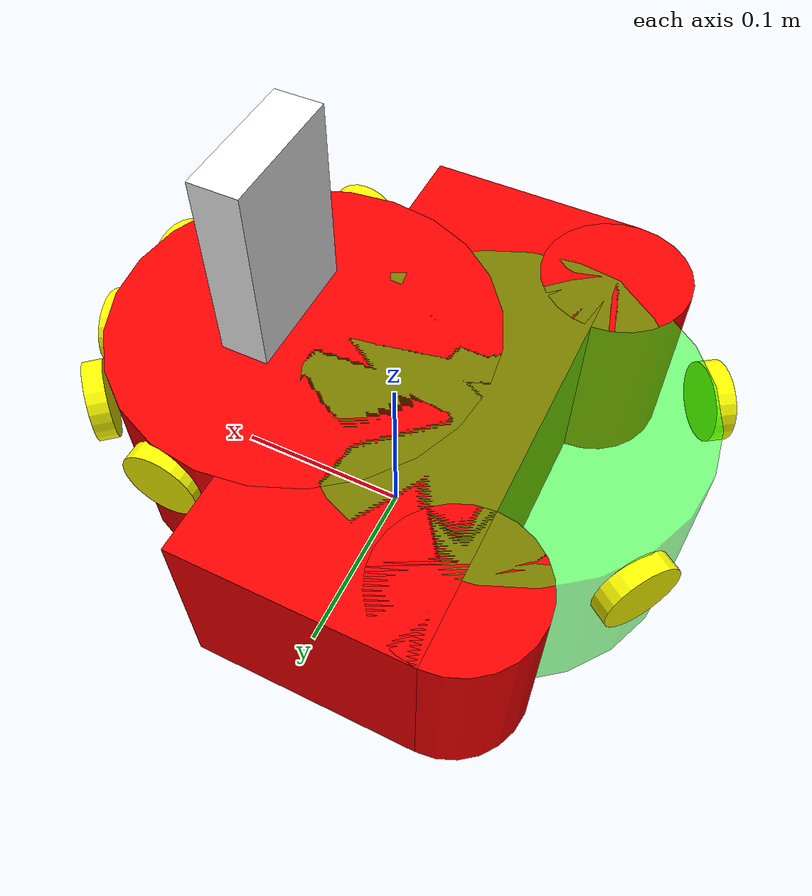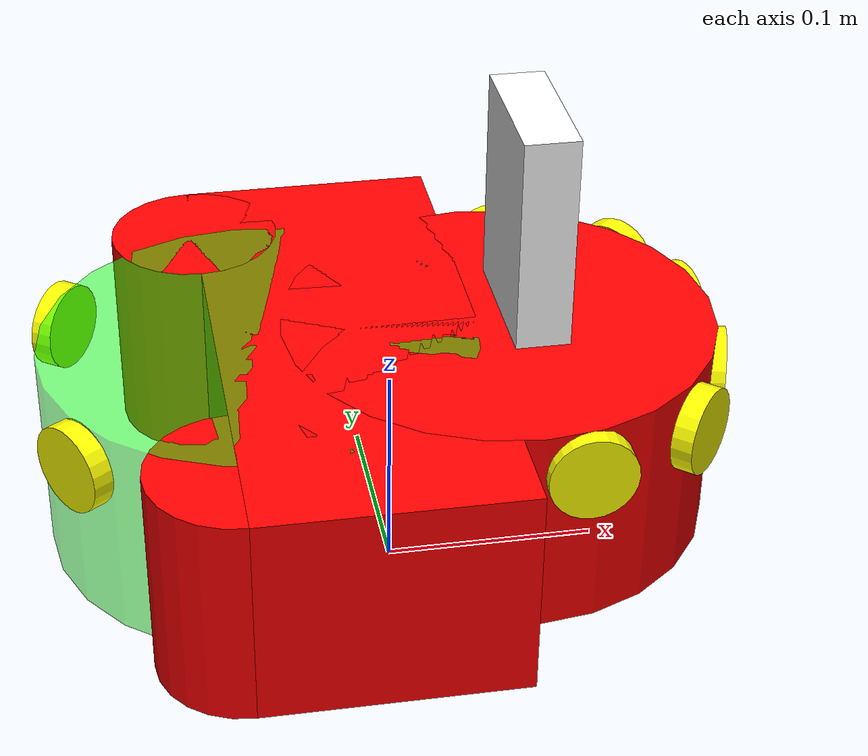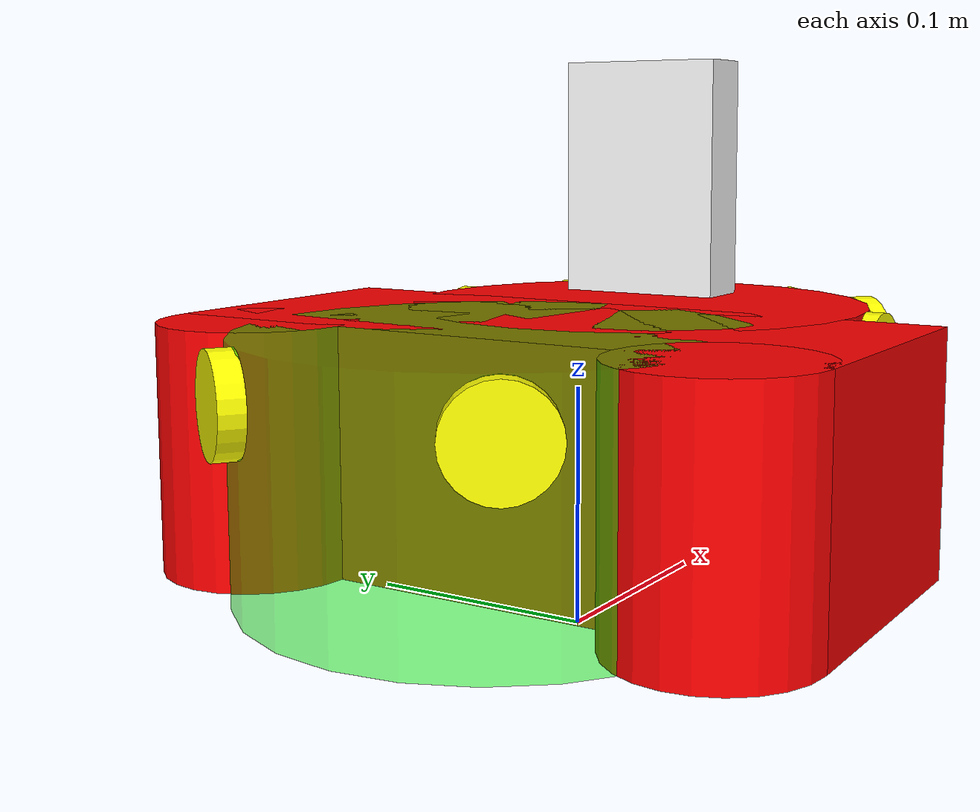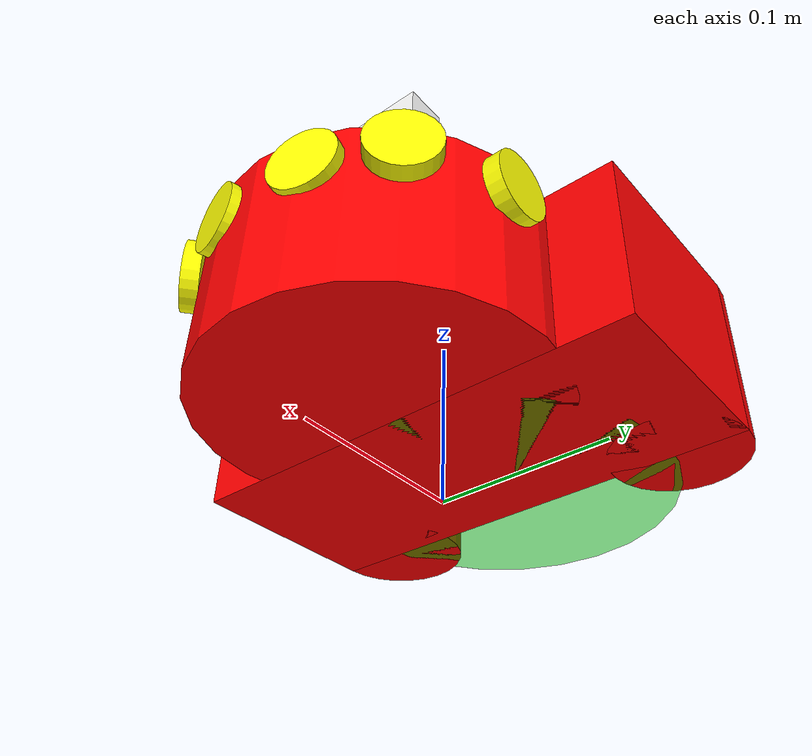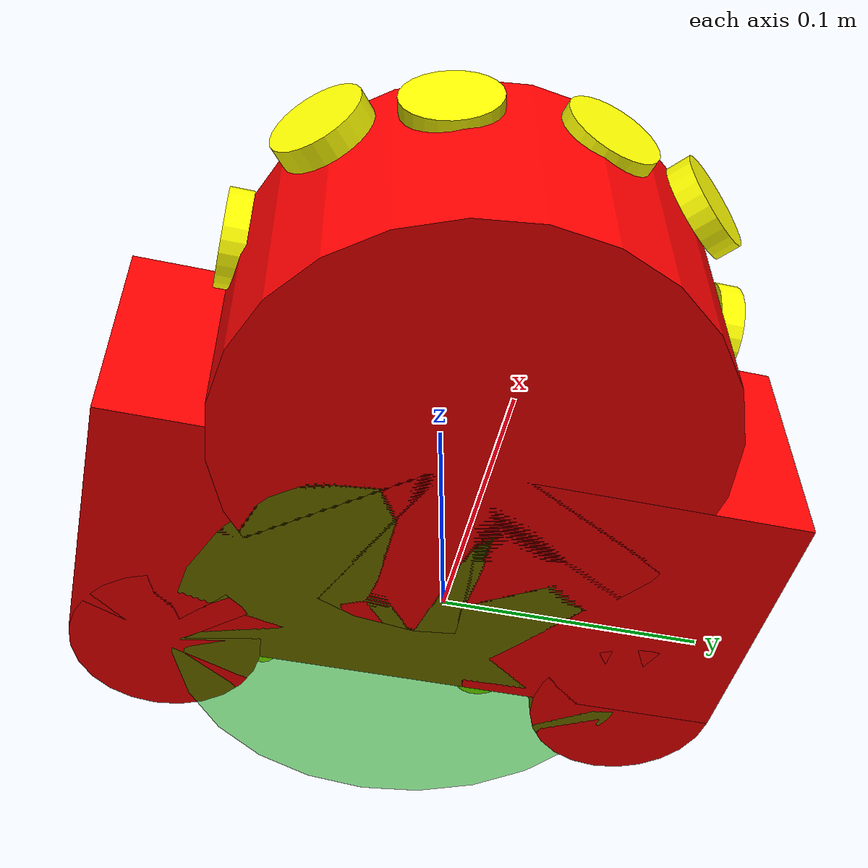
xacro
<?xml version="1.0"?>

<!-- created by Michael Kopp, 2017-02-27, BSD licensed -->

<robot name="amigobot"
    xmlns:sensor="http://playerstage.sourceforge.net/gazebo/xmlschema/#sensor"
    xmlns:controller="http://playerstage.sourceforge.net/gazebo/xmlschema/#controller"
    xmlns:interface="http://playerstage.sourceforge.net/gazebo/xmlschema/#interface"
    xmlns:xacro="http://ros.org/wiki/xacro">

    <!-- chassis -->
    <link name="base_link">
        <visual>
            <origin xyz="0.05 0 0.08" /> <!-- 3cm above floor, height 10cm; center at 8cm -->
            <geometry>
                <cylinder length="0.10" radius="0.1" />
            </geometry>
            <material name="robot_color"> <color rgba="1 0 0 1" /> </material>
        </visual>
        <visual>
            <origin xyz="-0.06 0 0.08" />
            <geometry>
                <cylinder length="0.10" radius="0.1" />
            </geometry>
                <material name="green"> <color rgba="0 1 0 0.5" /> </material>
        </visual>
        <visual>
            <origin xyz="-0.02 0 0.08" />
            <geometry>
                <box size="0.12 0.28 0.1" />
            </geometry>
            <material name="robot_color" />
        </visual>
        <visual>
            <origin xyz="-0.08 0.1 0.08" /> <!-- x is box border -->
            <geometry>
                <cylinder length="0.10" radius="0.04" />
            </geometry>
            <material name="robot_color" />
        </visual>
        <visual>
            <origin xyz="-0.08 -0.1 0.08" />
            <geometry>
                <cylinder length="0.10" radius="0.04" />
            </geometry>
            <material name="robot_color" />
        </visual>
    </link>

    <!-- sonar; global frame in which sonar messages are published -->

    <link name="sonar" />
    <joint name="sonar_to_base_link" type="fixed">
        <parent link="base_link" />
        <child link="sonar" />
        <origin xyz="0 0 0.11" />
    </joint>

    <!-- individual sonars -->
    <xacro:macro name="single_sonar" params="num x y theta">
        <link name="sonar_${num}">
            <visual>
                <!-- flat cylinder; flat side is in x direction, rotate in joint
                 appropriately -->
                <origin xyz="0 0 0" rpy="0 1.5707963267948966 0" />
                <geometry>
                    <cylinder length="0.01" radius="0.02" />
                </geometry>
                <material name="yellow">
                    <color rgba="1 1 0 1" />
                </material>
            </visual>
        </link>
        <joint name="sonar_${num}_to_base_link" type="fixed">
            <parent link="base_link" />
            <child link="sonar_${num}" />
            <origin xyz="${x} ${y} 0.11" rpy="0 0 ${theta}" />
        </joint>
    </xacro:macro>

    <xacro:single_sonar num="0" x="0.07" y="0.1" theta="1.5707963267948966" />
    <xacro:single_sonar num="1" x="0.125" y="0.075" theta="0.715585" />
    <xacro:single_sonar num="2" x="0.144" y="0.03" theta="0.261799" />
    <xacro:single_sonar num="3" x="0.144" y="-0.03" theta="-0.261799" />
    <xacro:single_sonar num="4" x="0.125" y="-0.075" theta="-0.715585" />
    <xacro:single_sonar num="5" x="0.07" y="-0.1" theta="-1.5707963267948966" />
    <xacro:single_sonar num="6" x="-0.146" y="-0.058" theta="-2.53073" />
    <xacro:single_sonar num="7" x="-0.146" y="0.058" theta="2.53073" />

    <!-- stuff mounted on the robot should refer to this

         The robot has a small black dot at the "center" of the top_plate frame.
         -->

    <link name="top_plate" />
    <joint name="top_plate_to_base_link" type="fixed">
        <parent link="base_link" />
        <child link="top_plate" />
        <origin xyz="0 0 0.13" />
    </joint>

    <!-- arguments to this xacro file -->
    <xacro:arg name="web_cam_position" default="0.063 0 0.054" />
    <xacro:arg name="web_cam_rotation" default="1.5707963267948966 3.141592653589793 1.5707963267948966" />
    <!-- make them parameter in xacro -->
    <xacro:property name="web_cam_position_prop" value="$(arg web_cam_position)"/>
    <xacro:if value="${web_cam_position_prop != 'false'}">
        <link name="web_cam">
            <visual>
                <geometry>
                    <box size="0.07 0.1 0.025"/> <!-- size of an edimax_ic_3115w -->
                </geometry>
                <material name="white"> <color rgba="1 1 1 1" /> </material>
            </visual>
        </link>

        <joint name="camera_to_top_plate" type="fixed">
            <origin xyz="$(arg web_cam_position)" rpy="$(arg web_cam_rotation)"/>
            <parent link="top_plate"/>
            <child link="web_cam"/>
        </joint>
    </xacro:if>

</robot>
